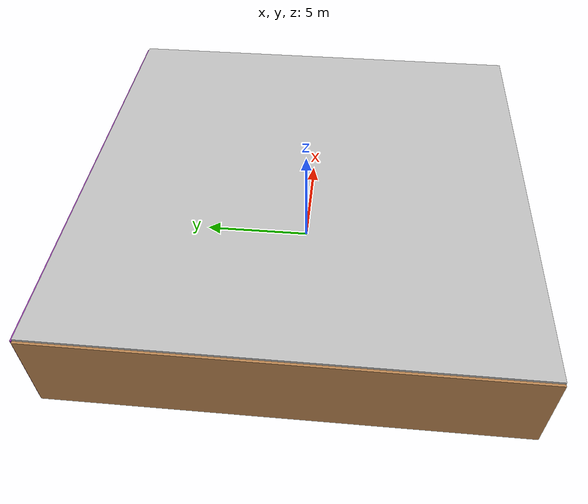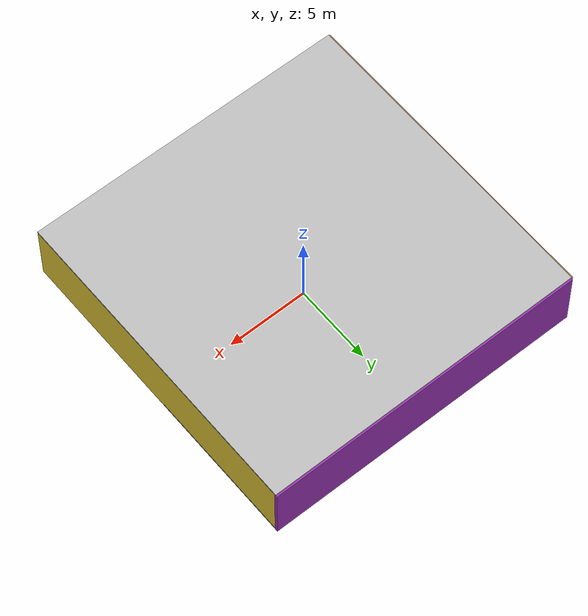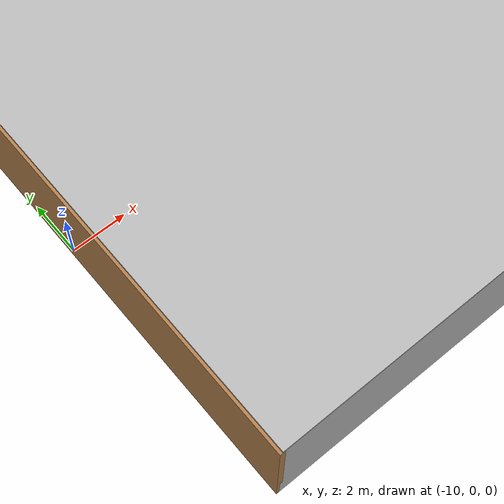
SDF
<sdf version="1.4">
 <world name="default">
  <physics type="ode">
   <max_step_size>0.001</max_step_size>
   <real_time_factor>1</real_time_factor>
   <real_time_update_rate>1000</real_time_update_rate>
   <gravity>0 0 -9.8</gravity>
  </physics>
  <scene><ambient>0.4 0.4 0.4 1</ambient><background>0.7 0.7 0.7 1</background><shadows>1</shadows></scene>
  <model name="Surrounding">
   <static>1</static>
   <link name="Ceiling">
    <collision name="Ceiling_Collision"><geometry><box><size>20 20 0.1</size></box></geometry></collision>
    <visual name="Ceiling_Visual">
     <geometry><box><size>20 20 0.1</size></box></geometry>
     <material>
      <script><uri>file://media/materials/scripts/gazebo.material</uri><name>Gazebo/JointAnchor</name></script>
     </material>
    </visual>
    <pose>0 0 4.05 0 0 0</pose>
   </link>
   <link name="Wall_South">
    <collision name="Wall_South_Collision">
     <geometry><box><size>20 0 4</size></box></geometry>
     <pose>0 0 2 0 -0 0</pose>
    </collision>
    <visual name="Wall_South_Visual">
     <pose>0 0 2 0 -0 0</pose>
     <geometry><box><size>20 0 4</size></box></geometry>
     <material>
      <script><uri>file://media/materials/scripts/gazebo.material</uri><name>Gazebo/PioneerBody</name></script>
     </material>
    </visual>
    <velocity_decay><linear>0</linear><angular>0</angular></velocity_decay>
    <pose>0 -10 0 0 -0 0</pose>
   </link>
   <link name="Wall_East">
    <collision name="Wall_21_Collision">
     <geometry><box><size>20 0 4</size></box></geometry>
     <pose>0 0 2 0 -0 0</pose>
    </collision>
    <visual name="Wall_21_Visual">
     <pose>0 0 2 0 -0 0</pose>
     <geometry><box><size>20 0 4</size></box></geometry>
     <material>
      <script><uri>file://media/materials/scripts/gazebo.material</uri><name>Gazebo/ZincYellow</name></script>
     </material>
    </visual>
    <velocity_decay><linear>0</linear><angular>0</angular></velocity_decay>
    <pose>10 0 0 0 -0 1.5708</pose>
   </link>
   <link name="Wall_North">
    <collision name="Wall_22_Collision">
     <geometry><box><size>20 0.2 4</size></box></geometry>
     <pose>0 0 2 0 -0 0</pose>
    </collision>
    <visual name="Wall_22_Visual">
     <pose>0 0 2 0 -0 0</pose>
     <geometry><box><size>20 0.2 4</size></box></geometry>
     <material>
      <script><uri>file://media/materials/scripts/gazebo.material</uri><name>Gazebo/PurpleGlow</name></script>
     </material>
    </visual>
    <velocity_decay><linear>0</linear><angular>0</angular></velocity_decay>
    <pose>0 10 0 0 -0 0</pose>
   </link>
   <link name="Wall_West">
    <collision name="Wall_23_Collision">
     <geometry><box><size>20 0.2 4</size></box></geometry>
     <pose>0 0 2 0 -0 0</pose>
    </collision>
    <visual name="Wall_23_Visual">
     <pose>0 0 2 0 -0 0</pose>
     <geometry><box><size>20 0.2 4</size></box></geometry>
     <material>
      <script><uri>file://media/materials/scripts/gazebo.material</uri><name>Gazebo/WoodPallet</name></script>
     </material>
    </visual>
    <velocity_decay><linear>0</linear><angular>0</angular></velocity_decay>
    <pose>-10 0 0 0 0 -1.5708</pose>
   </link>
   <link name="Ground_link">
    <collision name="collision">
     <pose>0 0 .05 0 -0 0</pose>
     <geometry><box><size>20 20 0.1</size></box></geometry>
    </collision>
    <visual name="visual">
     <pose>0 0 .05 0 -0 0</pose>
     <geometry><box><size>20 20 0.1</size></box></geometry>
     <material>
      <script><uri>file://media/materials/scripts/gazebo.material</uri><name>Gazebo/GreyGradientSky</name></script>
     </material>
    </visual>
   </link>
   <static>1</static>
  </model>
  <spherical_coordinates>
   <surface_model>EARTH_WGS84</surface_model>
   <latitude_deg>0</latitude_deg>
   <longitude_deg>0</longitude_deg>
   <elevation>0</elevation>
   <heading_deg>0</heading_deg>
  </spherical_coordinates>
  <light name="lightball_0" type="diffuse">
   <diffuse>0.8 0.8 0.8 1</diffuse>
   <specular>0.2 0.2 0.2 1</specular>
   <attenuation>
    <range>100</range>
    <constant>0.7</constant>
    <linear>0.01</linear>
    <quadratic>0.001</quadratic>
   </attenuation>
   <direction>-0.5 0.1 -0.9</direction>
   <pose>-4.36577526722 0.247650621128 0.854622061042 0 0 0</pose>
  </light>
  <light name="lightball_1" type="diffuse">
   <diffuse>0.8 0.8 0.8 1</diffuse>
   <specular>0.2 0.2 0.2 1</specular>
   <attenuation>
    <range>100</range>
    <constant>0.7</constant>
    <linear>0.01</linear>
    <quadratic>0.001</quadratic>
   </attenuation>
   <direction>-0.5 0.1 -0.9</direction>
   <pose>-6.82341242375 -6.69824005723 1.58519090913 0 0 0</pose>
  </light>
  <light name="lightball_2" type="diffuse">
   <diffuse>0.8 0.8 0.8 1</diffuse>
   <specular>0.2 0.2 0.2 1</specular>
   <attenuation>
    <range>100</range>
    <constant>0.7</constant>
    <linear>0.01</linear>
    <quadratic>0.001</quadratic>
   </attenuation>
   <direction>-0.5 0.1 -0.9</direction>
   <pose>-1.81156070581 3.70459427659 0.70798501131 0 0 0</pose>
  </light>
  <light name="lightball_3" type="diffuse">
   <diffuse>0.8 0.8 0.8 1</diffuse>
   <specular>0.2 0.2 0.2 1</specular>
   <attenuation>
    <range>100</range>
    <constant>0.7</constant>
    <linear>0.01</linear>
    <quadratic>0.001</quadratic>
   </attenuation>
   <direction>-0.5 0.1 -0.9</direction>
   <pose>-0.722158217956 8.20730191649 1.13376317648 0 0 0</pose>
  </light>
  <light name="lightball_4" type="diffuse">
   <diffuse>0.8 0.8 0.8 1</diffuse>
   <specular>0.2 0.2 0.2 1</specular>
   <attenuation>
    <range>100</range>
    <constant>0.7</constant>
    <linear>0.01</linear>
    <quadratic>0.001</quadratic>
   </attenuation>
   <direction>-0.5 0.1 -0.9</direction>
   <pose>-3.31597842976 -1.86387022087 0.837975665978 0 0 0</pose>
  </light>
  <light name="lightball_5" type="diffuse">
   <diffuse>0.8 0.8 0.8 1</diffuse>
   <specular>0.2 0.2 0.2 1</specular>
   <attenuation>
    <range>100</range>
    <constant>0.7</constant>
    <linear>0.01</linear>
    <quadratic>0.001</quadratic>
   </attenuation>
   <direction>-0.5 0.1 -0.9</direction>
   <pose>-8.20399254524 8.3367841032 2.34645228166 0 0 0</pose>
  </light>
  <light name="lightball_6" type="diffuse">
   <diffuse>0.8 0.8 0.8 1</diffuse>
   <specular>0.2 0.2 0.2 1</specular>
   <attenuation>
    <range>100</range>
    <constant>0.7</constant>
    <linear>0.01</linear>
    <quadratic>0.001</quadratic>
   </attenuation>
   <direction>-0.5 0.1 -0.9</direction>
   <pose>-5.20802601423 0.75033966551 0.742779212568 0 0 0</pose>
  </light>
  <light name="lightball_7" type="diffuse">
   <diffuse>0.8 0.8 0.8 1</diffuse>
   <specular>0.2 0.2 0.2 1</specular>
   <attenuation>
    <range>100</range>
    <constant>0.7</constant>
    <linear>0.01</linear>
    <quadratic>0.001</quadratic>
   </attenuation>
   <direction>-0.5 0.1 -0.9</direction>
   <pose>9.49495888636 2.18279756508 1.94297706707 0 0 0</pose>
  </light>
  <light name="lightball_8" type="diffuse">
   <diffuse>0.8 0.8 0.8 1</diffuse>
   <specular>0.2 0.2 0.2 1</specular>
   <attenuation>
    <range>100</range>
    <constant>0.7</constant>
    <linear>0.01</linear>
    <quadratic>0.001</quadratic>
   </attenuation>
   <direction>-0.5 0.1 -0.9</direction>
   <pose>9.73630802633 -5.28609147174 2.85218439714 0 0 0</pose>
  </light>
  <include>
   <uri>model://robocup_3Dsim_goal</uri>
   <pose>-7.33801598018 -4.07218840492 0 0 0 0.0893346554995</pose>
  </include>
  <include>
   <uri>model://construction_cone</uri>
   <pose>-4.64424324316 1.34341659436 0 0 0 2.84209154951</pose>
  </include>
  <include><uri>model://table</uri><pose>-1.91970075983 -7.47260990781 0 0 0 3.04068132566</pose></include>
  <include>
   <uri>model://construction_cone</uri>
   <pose>0.944573927316 -6.93422021097 0 0 0 0.0534033894054</pose>
  </include>
  <include><uri>model://cabinet</uri><pose>3.78245187312 -4.11178314427 0 0 0 0.72771128192</pose></include>
  <include>
   <uri>model://construction_cone</uri>
   <pose>3.87468330757 7.33419383494 0 0 0 1.19440674097</pose>
  </include>
 </world>
</sdf>

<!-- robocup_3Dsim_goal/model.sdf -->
<sdf version="1.5">
  <model name="robocup_3d_goal">
    <static>true</static>
    <link name="left_post">
      <pose>0 1.05 0.45 0 0 0</pose>
      <collision name="collision">
        <geometry>
          <cylinder>
            <radius>0.05</radius>
            <length>0.9</length>
          </cylinder>
        </geometry>
      </collision>
      <visual name="visual">
        <geometry>
          <cylinder>
            <radius>0.05</radius>
            <length>0.9</length>
          </cylinder>
        </geometry>
        <material>
          <script>
            <uri>file://media/materials/scripts/gazebo.material</uri>
            <name>Gazebo/ZincYellow</name>
          </script>
        </material>
      </visual>
    </link>
    <link name="left_support_horiz_lower">
      <pose>0.30 1.05 0.01 0 0 0</pose>
      <collision name="collision">
        <geometry>
          <box>
            <size>0.50 0.02 0.02</size>
          </box>
        </geometry>
      </collision>
      <visual name="visual">
        <geometry>
          <box>
            <size>0.50 0.02 0.02</size>
          </box>
        </geometry>
        <material>
          <script>
            <uri>file://media/materials/scripts/gazebo.material</uri>
            <name>Gazebo/White</name>
          </script>
        </material>
      </visual>
    </link>
    <link name="left_support_horiz_upper">
      <pose>0.30 1.05 0.79 0 0 0</pose>
      <collision name="collision">
        <geometry>
          <box>
            <size>0.50 0.02 0.02</size>
          </box>
        </geometry>
      </collision>
      <visual name="visual">
        <geometry>
          <box>
            <size>0.50 0.02 0.02</size>
          </box>
        </geometry>
        <material>
          <script>
            <uri>file://media/materials/scripts/gazebo.material</uri>
            <name>Gazebo/White</name>
          </script>
        </material>
      </visual>
    </link>
    <link name="left_support_vertical">
      <pose>0.56 1.05 0.4 0 1.5708 0</pose>
      <collision name="collision">
        <geometry>
          <box>
            <size>0.80 0.02 0.02</size>
          </box>
        </geometry>
      </collision>
      <visual name="visual">
        <geometry>
          <box>
            <size>0.80 0.02 0.02</size>
          </box>
        </geometry>
        <material>
          <script>
            <uri>file://media/materials/scripts/gazebo.material</uri>
            <name>Gazebo/White</name>
          </script>
        </material>
      </visual>
    </link>
    <link name="right_support_horiz_lower">
      <pose>0.30 -1.05 0.01 0 0 0</pose>
      <collision name="collision">
        <geometry>
          <box>
            <size>0.50 0.02 0.02</size>
          </box>
        </geometry>
      </collision>
      <visual name="visual">
        <geometry>
          <box>
            <size>0.50 0.02 0.02</size>
          </box>
        </geometry>
        <material>
          <script>
            <uri>file://media/materials/scripts/gazebo.material</uri>
            <name>Gazebo/White</name>
          </script>
        </material>
      </visual>
    </link>
    <link name="right_support_horiz_upper">
      <pose>0.30 -1.05 0.79 0 0 0</pose>
      <collision name="collision">
        <geometry>
          <box>
            <size>0.50 0.02 0.02</size>
          </box>
        </geometry>
      </collision>
      <visual name="visual">
        <geometry>
          <box>
            <size>0.50 0.02 0.02</size>
          </box>
        </geometry>
        <material>
          <script>
            <uri>file://media/materials/scripts/gazebo.material</uri>
            <name>Gazebo/White</name>
          </script>
        </material>
      </visual>
    </link>
    <link name="right_support_vertical">
      <pose>0.56 -1.05 0.4 0 1.5708 0</pose>
      <collision name="collision">
        <geometry>
          <box>
            <size>0.80 0.02 0.02</size>
          </box>
        </geometry>
      </collision>
      <visual name="visual">
        <geometry>
          <box>
            <size>0.80 0.02 0.02</size>
          </box>
        </geometry>
        <material>
          <script>
            <uri>file://media/materials/scripts/gazebo.material</uri>
            <name>Gazebo/White</name>
          </script>
        </material>
      </visual>
    </link>
    <link name="center_support_horiz_lower">
      <pose>0.56 0 0.01 0 1.5708 0</pose>
      <collision name="collision">
        <geometry>
          <box>
            <size>0.02 2.08 0.02</size>
          </box>
        </geometry>
      </collision>
      <visual name="visual">
        <geometry>
          <box>
            <size>0.02 2.08 0.02</size>
          </box>
        </geometry>
        <material>
          <script>
            <uri>file://media/materials/scripts/gazebo.material</uri>
            <name>Gazebo/White</name>
          </script>
        </material>
      </visual>
    </link>
    <link name="center_support_horiz_upper">
      <pose>0.56 0 0.79 0 1.5708 0</pose>
      <collision name="collision">
        <geometry>
          <box>
            <size>0.02 2.08 0.02</size>
          </box>
        </geometry>
      </collision>
      <visual name="visual">
        <geometry>
          <box>
            <size>0.02 2.08 0.02</size>
          </box>
        </geometry>
        <material>
          <script>
            <uri>file://media/materials/scripts/gazebo.material</uri>
            <name>Gazebo/White</name>
          </script>
        </material>
      </visual>
    </link>
    <link name="right_post">
      <pose>0 -1.05 0.45 0 0 0</pose>
      <collision name="collision">
        <geometry>
          <cylinder>
            <radius>0.05</radius>
            <length>0.9</length>
          </cylinder>
        </geometry>
      </collision>
      <visual name="visual">
        <geometry>
          <cylinder>
            <radius>0.05</radius>
            <length>0.9</length>
          </cylinder>
        </geometry>
        <material>
          <script>
            <uri>file://media/materials/scripts/gazebo.material</uri>
            <name>Gazebo/ZincYellow</name>
          </script>
        </material>
      </visual>
    </link>
    <link name="crossbar">
      <pose>0 0 0.85 1.57 1.57 0</pose>
      <collision name="collision">
        <geometry>
          <cylinder>
            <radius>0.05</radius>
            <length>2.0</length>
          </cylinder>
        </geometry>
      </collision>
      <visual name="visual">
        <geometry>
          <cylinder>
            <radius>0.05</radius>
            <length>2.0</length>
          </cylinder>
        </geometry>
        <material>
          <script>
            <uri>file://media/materials/scripts/gazebo.material</uri>
            <name>Gazebo/ZincYellow</name>
          </script>
        </material>
      </visual>
    </link>
    <link name="center_net">
      <pose>0.56 0 0.40 0 0 0</pose>
      <collision name="collision">
        <geometry>
          <box>
            <size>0.01 2.1 0.80</size>
          </box>
        </geometry>
      </collision>
      <visual name="visual">
        <geometry>
          <box>
            <size>0.01 2.1 0.80</size>
          </box>
        </geometry>
        <material>
          <script>
            <uri>model://../model_source/models/robocup09_spl_field/materials/scripts/</uri>
            <uri>model://../model_source/models/robocup09_spl_field/materials/textures/</uri>
            <name>RoboCup/Net</name>
          </script>
        </material>
      </visual>
    </link>
    <link name="left_net">
      <pose>0.30 1.05 0.40 0 0 0</pose>
      <collision name="collision">
        <geometry>
          <box>
            <size>0.50 0.01 0.76</size>
          </box>
        </geometry>
      </collision>
      <visual name="visual">
        <geometry>
          <box>
            <size>0.50 0.01 0.76</size>
          </box>
        </geometry>
        <material>
          <script>
            <uri>model://../model_source/models/robocup09_spl_field/materials/scripts/</uri>
            <uri>model://../model_source/models/robocup09_spl_field/materials/textures/</uri>
            <name>RoboCup/Net</name>
          </script>
        </material>
      </visual>
    </link>
    <link name="right_net">
      <pose>0.30 -1.05 0.40 0 0 0</pose>
      <collision name="collision">
        <geometry>
          <box>
            <size>0.50 0.01 0.76</size>
          </box>
        </geometry>
      </collision>
      <visual name="visual">
        <geometry>
          <box>
            <size>0.50 0.01 0.76</size>
          </box>
        </geometry>
        <material>
          <script>
            <uri>model://../model_source/models/robocup09_spl_field/materials/scripts/</uri>
            <uri>model://../model_source/models/robocup09_spl_field/materials/textures/</uri>
            <name>RoboCup/Net</name>
          </script>
        </material>
      </visual>
    </link>
  </model>
</sdf>

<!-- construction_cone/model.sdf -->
<sdf version="1.5">
  <model name="Construction Cone">
    <link name="link">
      <collision name="collision">
        <geometry>
          <mesh>
            <scale>10 10 10</scale>
            <uri>file://isr-testbed/construction_cone/meshes/construction_cone.dae</uri>
          </mesh>
        </geometry>
      </collision>
      <visual name="visual">
        <geometry>
          <mesh>
            <scale>10 10 10</scale>
            <uri>file://isr-testbed/construction_cone/meshes/construction_cone.dae</uri>
          </mesh>
        </geometry>
      </visual>
    </link>
  </model>
</sdf>

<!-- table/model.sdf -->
<sdf version="1.5">
  <model name="table">
    <static>true</static>
    <link name="link">
      <collision name="surface">
        <pose>0 0 1.0 0 0 0</pose>
        <geometry>
          <box>
            <size>1.5 0.8 0.03</size>
          </box>
        </geometry>
        <surface>
          <friction>
            <ode>
              <mu>0.6</mu>
              <mu2>0.6</mu2>
            </ode>
          </friction>
        </surface>
      </collision>
      <visual name="visual1">
        <pose>0 0 1.0 0 0 0</pose>
        <geometry>
          <box>
            <size>1.5 0.8 0.03</size>
          </box>
        </geometry>
        <material>
          <script>
            <uri>model://media/materials/scripts/gazebo.material</uri>
            <name>Gazebo/Wood</name>
          </script>
        </material>
      </visual>
      <collision name="front_left_leg">
        <pose>0.68 0.38 0.5 0 0 0</pose>
        <geometry>
          <cylinder>
            <radius>0.02</radius>
            <length>1.0</length>
          </cylinder>
        </geometry>
      </collision>
      <visual name="front_left_leg">
        <pose>0.68 0.38 0.5 0 0 0</pose>
        <geometry>
          <cylinder>
            <radius>0.02</radius>
            <length>1.0</length>
          </cylinder>
        </geometry>
        <material>
          <script>
            <uri>model://media/materials/scripts/gazebo.material</uri>
            <name>Gazebo/Grey</name>
          </script>
        </material>
      </visual>
      <collision name="front_right_leg">
        <pose>0.68 -0.38 0.5 0 0 0</pose>
        <geometry>
          <cylinder>
            <radius>0.02</radius>
            <length>1.0</length>
          </cylinder>
        </geometry>
      </collision>
      <visual name="front_right_leg">
        <pose>0.68 -0.38 0.5 0 0 0</pose>
        <geometry>
          <cylinder>
            <radius>0.02</radius>
            <length>1.0</length>
          </cylinder>
        </geometry>
        <material>
          <script>
            <uri>model://media/materials/scripts/gazebo.material</uri>
            <name>Gazebo/Grey</name>
          </script>
        </material>
      </visual>
      <collision name="back_right_leg">
        <pose>-0.68 -0.38 0.5 0 0 0</pose>
        <geometry>
          <cylinder>
            <radius>0.02</radius>
            <length>1.0</length>
          </cylinder>
        </geometry>
      </collision>
      <visual name="back_right_leg">
        <pose>-0.68 -0.38 0.5 0 0 0</pose>
        <geometry>
          <cylinder>
            <radius>0.02</radius>
            <length>1.0</length>
          </cylinder>
        </geometry>
        <material>
          <script>
            <uri>model://media/materials/scripts/gazebo.material</uri>
            <name>Gazebo/Grey</name>
          </script>
        </material>
      </visual>
      <collision name="back_left_leg">
        <pose>-0.68 0.38 0.5 0 0 0</pose>
        <geometry>
          <cylinder>
            <radius>0.02</radius>
            <length>1.0</length>
          </cylinder>
        </geometry>
      </collision>
      <visual name="back_left_leg">
        <pose>-0.68 0.38 0.5 0 0 0</pose>
        <geometry>
          <cylinder>
            <radius>0.02</radius>
            <length>1.0</length>
          </cylinder>
        </geometry>
        <material>
          <script>
            <uri>model://media/materials/scripts/gazebo.material</uri>
            <name>Gazebo/Grey</name>
          </script>
        </material>
      </visual>
    </link>
  </model>
</sdf>

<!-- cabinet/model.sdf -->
<sdf version="1.5">
  <model name="cabinet">
    <static>true</static>
    <link name="cabinet_bottom_plate">
      <inertial>
        <pose>0 0 -1 0 0 0</pose>
        <inertia>
          <ixx>2.050000</ixx>
          <ixy>0</ixy>
          <ixz>0</ixz>
          <iyy>2.050000</iyy>
          <iyz>0</iyz>
          <izz>2.050000</izz>
        </inertia>
        <mass>25.000000</mass>
      </inertial>
      <collision name="cabinet_bottom_plate_geom">
        <pose>0 0 0.010000 0 0 0</pose>
        <geometry>
          <box>
            <size>0.450000 0.450000 0.020000</size>
          </box>
        </geometry>
      </collision>
      <visual name="cabinet_bottom_plate_geom_visual">
        <pose>0 0 0.010000 0 0 0</pose>
        <geometry>
          <box>
            <size>0.450000 0.450000 0.020000</size>
          </box>
        </geometry>
        <material>
          <script>
            <uri>model://media/materials/scripts/gazebo.material</uri>
            <name>Gazebo/Wood</name>
          </script>
        </material>
      </visual>
      <collision name="cabinet_bottom_plate_geom_cabinet_back_plate">
        <pose>0.235000 0 0.510000 0 0 0</pose>
        <geometry>
          <box>
            <size>0.020000 0.450000 1.020000</size>
          </box>
        </geometry>
      </collision>
      <visual name="cabinet_bottom_plate_geom_cabinet_back_plate_visual">
        <pose>0.235000 0 0.510000 0 0 0</pose>
        <geometry>
          <box>
            <size>0.020000 0.450000 1.020000</size>
          </box>
        </geometry>
        <material>
          <script>
            <uri>model://media/materials/scripts/gazebo.material</uri>
            <name>Gazebo/Wood</name>
          </script>
        </material>
      </visual>
      <collision name="cabinet_bottom_plate_geom_cabinet_left_plate">
        <pose>0 0.235000 0.510000 0 0 0</pose>
        <geometry>
          <box>
            <size>0.450000 0.020000 1.020000</size>
          </box>
        </geometry>
      </collision>
      <visual name="cabinet_bottom_plate_geom_cabinet_left_plate_visual">
        <pose>0 0.235000 0.510000 0 0 0</pose>
        <geometry>
          <box>
            <size>0.450000 0.020000 1.020000</size>
          </box>
        </geometry>
        <material>
          <script>
            <uri>model://media/materials/scripts/gazebo.material</uri>
            <name>Gazebo/Wood</name>
          </script>
        </material>
      </visual>
      <collision name="cabinet_bottom_plate_geom_cabinet_middle_plate">
        <pose>0 0 0.510000 0 0 0</pose>
        <geometry>
          <box>
            <size>0.450000 0.450000 0.020000</size>
          </box>
        </geometry>
      </collision>
      <visual name="cabinet_bottom_plate_geom_cabinet_middle_plate_visual">
        <pose>0 0 0.510000 0 0 0</pose>
        <geometry>
          <box>
            <size>0.450000 0.450000 0.020000</size>
          </box>
        </geometry>
        <material>
          <script>
            <uri>model://media/materials/scripts/gazebo.material</uri>
            <name>Gazebo/Wood</name>
          </script>
        </material>
      </visual>
      <collision name="cabinet_bottom_plate_geom_cabinet_right_plate">
        <pose>0 -0.235000 0.510000 0 0 0</pose>
        <geometry>
          <box>
            <size>0.450000 0.020000 1.020000</size>
          </box>
        </geometry>
      </collision>
      <visual name="cabinet_bottom_plate_geom_cabinet_right_plate_visual">
        <pose>0 -0.235000 0.510000 0 0 0</pose>
        <geometry>
          <box>
            <size>0.450000 0.020000 1.020000</size>
          </box>
        </geometry>
        <material>
          <script>
            <uri>model://media/materials/scripts/gazebo.material</uri>
            <name>Gazebo/Wood</name>
          </script>
        </material>
      </visual>
      <collision name="cabinet_bottom_plate_geom_cabinet_top_plate">
        <pose>0 0 1.010000 0 0 0</pose>
        <geometry>
          <box>
            <size>0.450000 0.450000 0.020000</size>
          </box>
        </geometry>
      </collision>
      <visual name="cabinet_bottom_plate_geom_cabinet_top_plate_visual">
        <pose>0 0 1.010000 0 0 0</pose>
        <geometry>
          <box>
            <size>0.450000 0.450000 0.020000</size>
          </box>
        </geometry>
        <material>
          <script>
            <uri>model://media/materials/scripts/gazebo.material</uri>
            <name>Gazebo/Wood</name>
          </script>
        </material>
      </visual>
    </link>
  </model>
</sdf>
